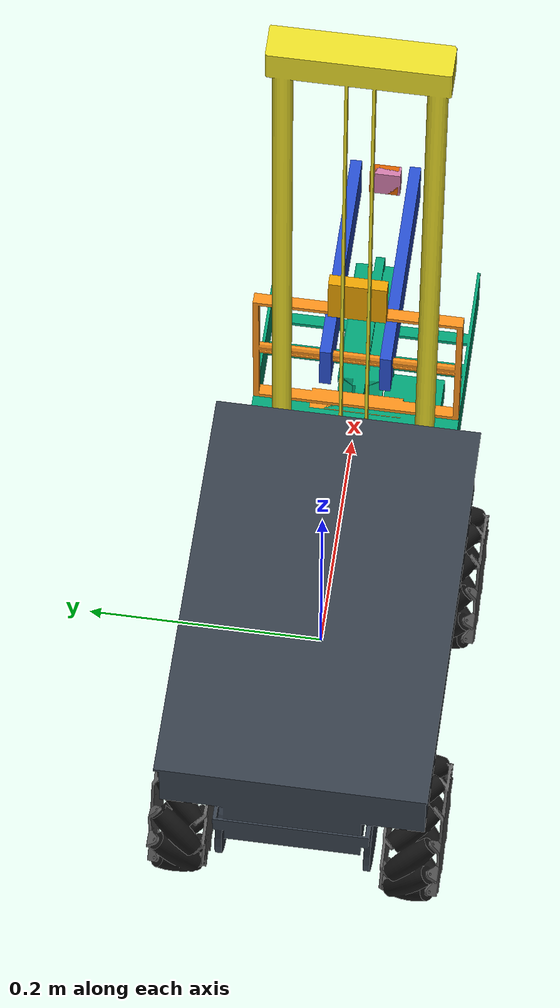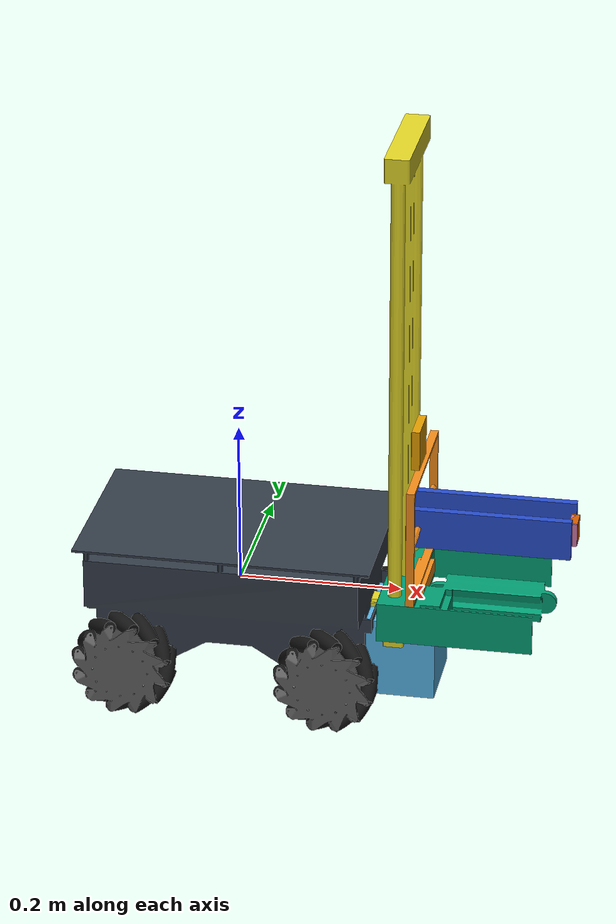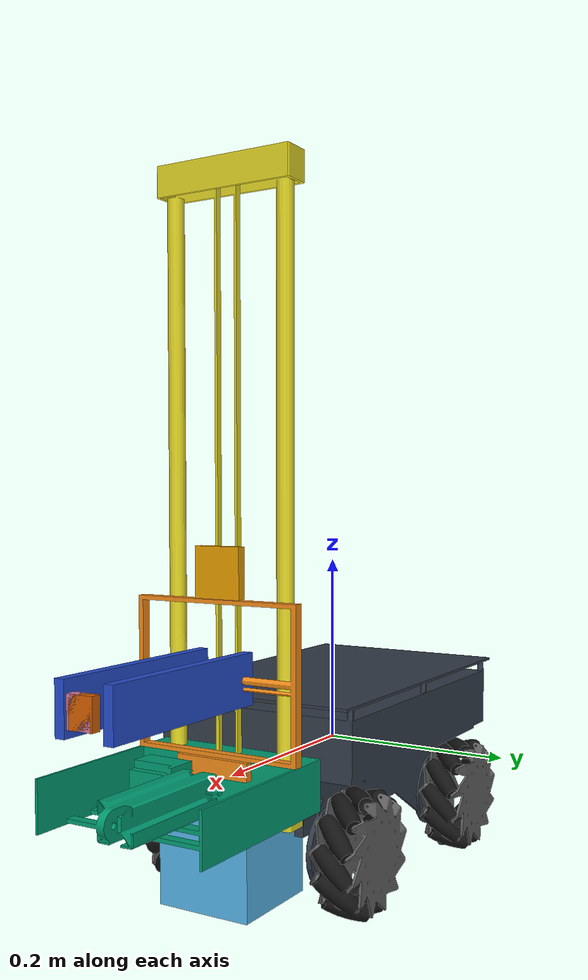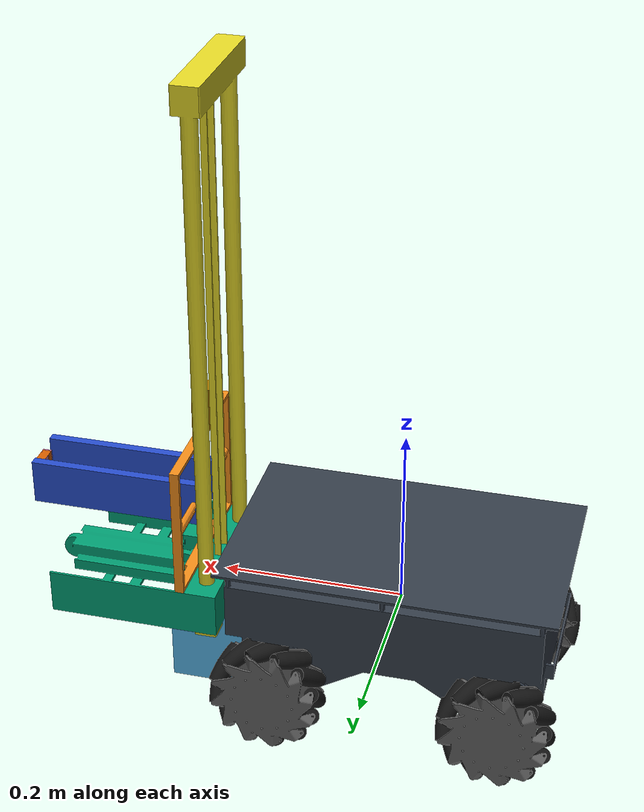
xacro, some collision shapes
<?xml version="1.0"?>

<robot name="summit_xl" xmlns:xacro="http://www.ros.org/wiki/xacro">

	<!-- Import summit XL wheels -->
	<xacro:include filename="$(find summit_description)/urdf/wheels/omni_wheel.urdf.xacro" />
	<xacro:include filename="$(find summit_description)/urdf/base/summit_base.urdf.xacro" />

	<!-- Wheel parameters -->
	<xacro:property name="wheel_offset_x" value="0.125" />    <!-- x,y,z in translation from base_link to the center of the wheel -->
	<xacro:property name="wheel_offset_y" value="0.10" />
	<xacro:property name="wheel_offset_z" value="-0.08" />

	<xacro:macro name="robot">
		<xacro:summit_base/>

		<xacro:omni_wheel prefix="summit_front_right" parent="base_link" reflect="false">
			<origin xyz="${wheel_offset_x} -${wheel_offset_y} ${wheel_offset_z}" rpy="0 0 0"/>
		</xacro:omni_wheel>

		<xacro:omni_wheel prefix="summit_front_left" parent="base_link" reflect="true">
			<origin xyz="${wheel_offset_x} ${wheel_offset_y} ${wheel_offset_z}" rpy="0 0 0"/>
		</xacro:omni_wheel>

		<xacro:omni_wheel prefix="summit_back_left" parent="base_link" reflect="true">
			<origin xyz="-${wheel_offset_x} ${wheel_offset_y} ${wheel_offset_z}" rpy="0 0 0"/>
		</xacro:omni_wheel>

		<xacro:omni_wheel prefix="summit_back_right" parent="base_link" reflect="false">
			<origin xyz="-${wheel_offset_x} -${wheel_offset_y} ${wheel_offset_z}" rpy="0 0 0"/>
		</xacro:omni_wheel>

   </xacro:macro>

   <xacro:robot/>

</robot>

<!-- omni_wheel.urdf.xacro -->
<robot name="wheel" xmlns:xacro="http://www.ros.org/wiki/xacro">

  <!-- Constants -->
  <xacro:property name="PI" value="3.1415926535897931" />
  <xacro:property name="wheel_radius" value="0.063445" />
  <xacro:property name="wheel_height" value="0.05" />
  <xacro:property name="wheel_mass" value="6.5" /> <!-- in kg-->

  <!-- Simple Macro to calculate inertia -->
  <xacro:macro name="cylinder_inertia" params="m r h">
    <inertia  ixx="${m*(3*r*r+h*h)/12}" ixy = "0" ixz = "0"
              iyy="${m*r*r/2}" iyz = "0"
              izz="${m*(3*r*r+h*h)/12}" />
  </xacro:macro>

  <!-- Set up of the Wheel -->
  <xacro:macro name="omni_wheel" params="prefix parent *origin reflect">

    <link name="${prefix}_wheel_link">
      <visual>
        <origin xyz="0 0 0" rpy="0 0 0" />
        <xacro:if value="${reflect}">
          <geometry>
            <mesh filename="package://summit_description/meshes/wheels/wh1.dae" />
          </geometry>
          </xacro:if>
          <xacro:unless value="${reflect}">
            <geometry>
              <mesh filename="package://summit_description/meshes/wheels/wh2.dae" />
            </geometry>
		    </xacro:unless>
      </visual>

      <collision>
				<origin xyz="0 0 0" rpy="${PI/2} 0 0" />
        <geometry>
					<cylinder length="${wheel_height}" radius="${wheel_radius}" />

        </geometry>
      </collision>

         <inertial>
		<mass value="6.5"/>
		<inertia
			ixx="0.030309499999999996" ixy="0.0" ixz="0.0" iyy="0.030309499999999996" iyz="0.0" izz="0.05241925"/>
		</inertial>
    </link>

    <joint name="${prefix}_wheel_joint" type="continuous">
      <parent link="${parent}"/>
      <child link="${prefix}_wheel_link"/>
      <xacro:insert_block name="origin" />
      <axis xyz="0 1 0" rpy="0 0 0" />
      <limit effort="100" velocity="100"/>
      <joint_properties damping="0.0" friction="0.0"/>
    </joint>

    <!-- Transmission is important to link the joints and the controller (see summit_xl_control/config/summit_xl_control.yaml)-->

  </xacro:macro>
</robot>

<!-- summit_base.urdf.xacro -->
<robot name="summit_xl" xmlns:xacro="http://www.ros.org/wiki/xacro">

  <xacro:macro name="summit_base">

	  <!-- Robot mechanical and motor parameters -->
	  <xacro:property name="PI" value="3.1415926535897931"/>
	  <xacro:property name="wheel_width" value="0.175" />

	<!-- BASE FOOTPRINT -->

    <gazebo>
        <plugin name="gazebo_ros_control" filename="libgazebo_ros_control.so">
            <robotNamespace>/lib_bot</robotNamespace>
        </plugin>
    </gazebo>

  <material name="black">
    <color rgba="0.0 0.0 0.0 1.0"/>
  </material>
  <material name="blue">
    <color rgba="0.203125 0.23828125 0.28515625 1.0"/>
  </material>
  <material name="green">
    <color rgba="0.0 0.8 0.0 1.0"/>
  </material>
  <material name="grey">
    <color rgba="0.2 0.2 0.2 1.0"/>
  </material>
  <material name="orange">
    <color rgba="1.0 0.423529411765 0.0392156862745 1.0"/>
  </material>
  <material name="brown">
    <color rgba="0.870588235294 0.811764705882 0.764705882353 1.0"/>
  </material>
  <material name="red">
    <color rgba="0.80078125 0.12890625 0.1328125 1.0"/>
  </material>
  <material name="white">
    <color rgba="1.0 1.0 1.0 1.0"/>
  </material>

  <gazebo reference="base_link">
    <material>Gazebo/Orange</material>
  </gazebo>
  <gazebo reference="link_left_wheel">
    <material>Gazebo/Blue</material>
  </gazebo>
  <gazebo reference="link_right_wheel">
    <material>Gazebo/Blue</material>
  </gazebo>
    <gazebo reference="tower_link">
    <material>Gazebo/Yellow</material>
  </gazebo>
  <gazebo reference="push_link">
    <material>Gazebo/Orange</material>
  </gazebo>
  <gazebo reference="jaw_1_link">
    <material>Gazebo/Blue</material>
  </gazebo>
  <gazebo reference="jaw_2_link">
    <material>Gazebo/Blue</material>
  </gazebo>

  <link name="base_link">
    <!-- pose and inertial -->
    <pose>0 0 0.1 0 0 0</pose>

    <inertial>
      <mass value="5"/>
      <origin rpy="0 0 0" xyz="0 0 0.1"/>
      <inertia ixx="0.0395416666667" ixy="0" ixz="0" iyy="0.106208333333" iyz="0" izz="0.106208333333"/>
    </inertial>

    <collision name="collision_chassis">
      <geometry>
       <mesh filename="package://summit_description/meshes/base/true_bae.dae" />
      </geometry>
    </collision>

    <visual>
      <origin rpy="0 0 0" xyz="0 0 0"/>
      <geometry>
         <mesh filename="package://summit_description/meshes/base/true_bae.dae" />
      </geometry>
      <material name="blue"/>
    </visual>

    </link>

  <!-- Create wheel right -->

    <link name="tower_link">
        <visual>
            <origin rpy="0 0 0" xyz="0 0 0.275"/>
            <geometry>
                <mesh filename="package://summit_description/meshes/base/tower.dae" />
            </geometry>
        </visual>
        <collision>
            <origin xyz="0 0 0.275" rpy="0 0 0"/>
            <geometry>
                 <box size="0.025 0.15 0.60"/>
            </geometry>
        </collision>
        <inertial>
            <origin xyz="0 0 0" rpy="0 0 0"/>
            <mass value="0.5" />
            <inertia ixx="0.0014541666666666665" ixy="0.0" ixz="0.0" iyy="0.0010416666666666667" iyz="0.0" izz="0.0022874999999999996"/>
        </inertial>
    </link>

    <link name="elevtor_link">
        <visual>
            <origin rpy="0 0 0" xyz="0 0 0"/>
            <geometry>
                 <mesh filename="package://summit_description/meshes/base/elevator.dae" />
            </geometry>
        </visual>
        <collision>
            <origin xyz="0 0 0" rpy="0 0 0"/>
            <geometry>
                <box size="0.15 0.18 0.05"/>
            </geometry>
        </collision>
        <inertial>
            <origin xyz="0 0 0" rpy="0 0 0"/>
            <mass value="0.5" />
            <inertia ixx="0.0014541666666666665" ixy="0.0" ixz="0.0" iyy="0.0010416666666666667" iyz="0.0" izz="0.0022874999999999996"/>
        </inertial>
    </link>

    <link name="push_link">
        <visual>
            <origin rpy="0 0 0" xyz="0 0 0"/>
            <geometry>
                <mesh filename="package://summit_description/meshes/base/push.dae" />
            </geometry>
        </visual>
        <collision>
            <origin xyz="0 0 0" rpy="0 0 0"/>
            <geometry>
                 <box size="0.01 0.18 0.15"/>
            </geometry>
        </collision>
        <inertial>
            <origin xyz="0 0 0" rpy="0 0 0"/>
            <mass value="0.05" />
            <inertia ixx="0.00022874999999999998" ixy="0.0" ixz="0.0" iyy="9.416666666666666e-05" iyz="0.0" izz="0.00013541666666666666"/>
        </inertial>
    </link>

    <link name="jaw_1_link">
        <visual>
            <origin rpy="0 0 0" xyz="0 0 0"/>
            <geometry>
                <box size="0.20 0.01 0.05"/>
            </geometry>
        </visual>
        <collision>
            <origin xyz="0 0 0" rpy="0 0 0"/>
            <geometry>
                 <box size="0.20 0.01 0.05"/>
            </geometry>
        </collision>
        <inertial>
            <origin xyz="0 0 0" rpy="0 0 0"/>
            <mass value="0.05" />
            <inertia ixx="0.00022874999999999998" ixy="0.0" ixz="0.0" iyy="9.416666666666666e-05" iyz="0.0" izz="0.00013541666666666666"/>
        </inertial>
    </link>

    <link name="jaw_1_attach">

    <visual>
      <origin xyz="0 0 0" rpy="0 0 0"/>
      <geometry>
        <box size="0.01 0.025 0.03"/>
      </geometry>
    </visual>
    <collision>
      <origin xyz="0 0 0" rpy="0 0 0"/>
      <geometry>
        <box size="0.01 0.025 0.03"/>
      </geometry>
    </collision>
    <inertial>
            <origin xyz="0 0 0" rpy="0 0 0" />
            <mass value="0.05" />
            <inertia ixx="4.166666666666667e-05" ixy="0.0" ixz="0.0" iyy="2.166666666666667e-05" iyz="0.0" izz="2.166666666666667e-05" />
    </inertial>

  </link>
  <link name="jaw_2_attach">

    <visual>
      <origin xyz="0 0 0" rpy="0 0 0"/>
      <geometry>
        <box size="0.01 0.025 0.03"/>
      </geometry>
    </visual>
    <collision>
      <origin xyz="0 0 0" rpy="0 0 0"/>
      <geometry>
        <box size="0.01 0.025 0.03"/>
      </geometry>
    </collision>
    <inertial>
            <origin xyz="0 0 0" rpy="0 0 0" />
            <mass value="0.05" />
            <inertia ixx="4.166666666666667e-05" ixy="0.0" ixz="0.0" iyy="2.166666666666667e-05" iyz="0.0" izz="2.166666666666667e-05" />
    </inertial>

  </link>

    <link name="jaw_2_link">
        <visual>
            <origin rpy="0 0 0" xyz="0 0 0"/>
            <geometry>
                <box size="0.20 0.01 0.05"/>
            </geometry>
        </visual>
        <collision>
            <origin xyz="0 0 0" rpy="0 0 0"/>
            <geometry>
                <box size="0.20 0.01 0.05"/>
            </geometry>
        </collision>
        <inertial>
            <origin xyz="0 0 0" rpy="0 0 0"/>
            <mass value="0.05" />
            <inertia ixx="0.00022874999999999998" ixy="0.0" ixz="0.0" iyy="9.416666666666666e-05" iyz="0.0" izz="0.00013541666666666666"/>
        </inertial>
    </link>

    <link name="camera">

    <visual>
      <origin xyz="0 0 0" rpy="0 0 0"/>
      <geometry>
        <box size="0.01 0.05 0.05"/>
      </geometry>
    </visual>
    <collision>
      <origin xyz="0 0 0" rpy="0 0 0"/>
      <geometry>
        <box size="0.05 0.05 0.05"/>
      </geometry>
    </collision>
    <inertial>
            <origin xyz="0 0 0" rpy="0 0 0" />
            <mass value="0.05" />
            <inertia ixx="4.166666666666667e-05" ixy="0.0" ixz="0.0" iyy="2.166666666666667e-05" iyz="0.0" izz="2.166666666666667e-05" />
    </inertial>

  </link>

  <link name="hokuyo_bottom">
    <collision>
      <origin xyz="0 0 0" rpy="0 0 0"/>
      <geometry>
    <box size="0.1 0.1 0.1"/>
      </geometry>
    </collision>

    <visual>
      <origin xyz="0 0 0" rpy="0 0 0"/>
      <geometry>
          <mesh filename="package://summit_description/meshes/base/hokuyo.dae" />
      </geometry>
    </visual>

    <inertial>
      <mass value="1e-5" />
      <origin xyz="0 0 0" rpy="0 0 0"/>
      <inertia ixx="1e-6" ixy="0" ixz="0" iyy="1e-6" iyz="0" izz="1e-6" />
    </inertial>
  </link>

  <!-- Left Wheel link -->

  <joint name="base_link_tower_link_joint" type="fixed">
    <origin xyz="0.20 0 0" rpy="0 0 0"/>
    <parent link="base_link"/>
    <child link="tower_link"/>
 </joint>

  <joint name="tower_link_elevtor_link_joint" type="prismatic">
    <axis xyz="0 0 1"/>
    <parent link="tower_link"/>
    <child link="elevtor_link"/>
    <limit effort="1000.0" lower="0" upper="0.55" velocity="0.2"/>
    <origin rpy="0 0 0" xyz="0.090 0 0"/>
  </joint>

  <joint name="elevtor_link_push_link_joint" type="prismatic">
    <axis xyz="1 0 0"/>
    <parent link="elevtor_link"/>
    <child link="push_link"/>
    <limit effort="1000.0" lower="0" upper="0.14" velocity="0.2"/>
    <origin rpy="0 0 0" xyz="-0.070 0 0.1"/>
  </joint>

  <joint name="push_link_jaw_1_joint" type="prismatic">
    <axis xyz="0 1 0"/>
    <parent link="push_link"/>
    <child link="jaw_1_link"/>
    <limit effort="1000.0" lower="0" upper="0.075" velocity="0.2"/>
    <origin rpy="0 0 0" xyz="0.090 0.026 0"/>
  </joint>

  <joint name="push_link_jaw_2_joint" type="prismatic">
    <axis xyz="0 1 0"/>
    <parent link="push_link"/>
    <child link="jaw_2_link"/>
    <limit effort="1000.0" lower="-0.075" upper="0" velocity="0.2"/>
    <origin rpy="0 0 0" xyz="0.090 -0.026 0"/>
  </joint>

  <joint name="camera_joint" type="fixed">
        <axis xyz="0 1 0" />
        <origin xyz="0 0 0.1" rpy="0 0 0"/>
        <parent link="push_link"/>
        <child link="camera"/>
  </joint>
  <joint name="hokuyo_bottom_joint" type="fixed">
    <axis xyz="0 1 0" />
    <origin xyz="0 0 -.07" rpy="0 0 0"/>
    <parent link="tower_link"/>
    <child link="hokuyo_bottom"/>
  </joint>
  <joint name="attach_1_joint" type="fixed">
    <axis xyz="0 1 0" />
    <origin xyz="0.10 -0.025 0" rpy="0 0 0"/>
    <parent link="jaw_1_link"/>
    <child link="jaw_1_attach"/>
  </joint>
  <joint name="attach_2_joint" type="fixed">
    <axis xyz="0 1 0" />
    <origin xyz="0.10 0.025 0" rpy="0 0 0"/>
    <parent link="jaw_2_link"/>
    <child link="jaw_2_attach"/>
  </joint>

   <transmission name="tran1">
    <type>transmission_interface/SimpleTransmission</type>
    <joint name="tower_link_elevtor_link_joint">
      <hardwareInterface>hardware_interface/PositionJointInterface</hardwareInterface>
    </joint>
    <actuator name="motor1">
      <hardwareInterface>hardware_interface/PositionJointInterface</hardwareInterface>
      <mechanicalReduction>1</mechanicalReduction>
    </actuator>
  </transmission>

  <transmission name="tran2">
    <type>transmission_interface/SimpleTransmission</type>
    <joint name="elevtor_link_push_link_joint">
      <hardwareInterface>hardware_interface/PositionJointInterface</hardwareInterface>
    </joint>
    <actuator name="motor2">
      <hardwareInterface>hardware_interface/PositionJointInterface</hardwareInterface>
      <mechanicalReduction>1</mechanicalReduction>
    </actuator>
  </transmission>

  <transmission name="tran3">
    <type>transmission_interface/SimpleTransmission</type>
    <joint name="push_link_jaw_1_joint">
      <hardwareInterface>hardware_interface/PositionJointInterface</hardwareInterface>
    </joint>
    <actuator name="motor3">
      <hardwareInterface>hardware_interface/PositionJointInterface</hardwareInterface>
      <mechanicalReduction>1</mechanicalReduction>
    </actuator>
  </transmission>

  <transmission name="tran4">
    <type>transmission_interface/SimpleTransmission</type>
    <joint name="push_link_jaw_2_joint">
      <hardwareInterface>hardware_interface/PositionJointInterface</hardwareInterface>
    </joint>
    <actuator name="motor4">
      <hardwareInterface>hardware_interface/PositionJointInterface</hardwareInterface>
      <mechanicalReduction>1</mechanicalReduction>
    </actuator>
  </transmission>

 <gazebo reference="camera">
    <sensor type="camera" name="camera1">
      <update_rate>30.0</update_rate>
      <camera name="head">
        <horizontal_fov>1.3962634</horizontal_fov>
        <image>
          <width>800</width>
          <height>800</height>
          <format>R8G8B8</format>
        </image>
        <clip>
          <near>0.02</near>
          <far>300</far>
        </clip>
      </camera>
      <plugin name="camera_controller" filename="libgazebo_ros_camera.so">
        <alwaysOn>true</alwaysOn>
        <updateRate>0.0</updateRate>
        <cameraName>lib_bot/camera</cameraName>
        <imageTopicName>image_raw</imageTopicName>
        <cameraInfoTopicName>camera_info</cameraInfoTopicName>
        <frameName>camera</frameName>
        <hackBaseline>0.07</hackBaseline>
        <distortionK1>0.0</distortionK1>
        <distortionK2>0.0</distortionK2>
        <distortionK3>0.0</distortionK3>
        <distortionT1>0.0</distortionT1>
        <distortionT2>0.0</distortionT2>
      </plugin>
    </sensor>
  </gazebo>

  <gazebo reference="hokuyo_bottom">
    <sensor type="gpu_ray" name="head_hokuyo_sensor">
      <pose>0 0 0 0 0 0</pose>
      <visualize>true</visualize>
      <update_rate>20</update_rate>
      <ray>
        <scan>
          <horizontal>
            <samples>720</samples>
            <resolution>1</resolution>
            <min_angle>-1.57</min_angle>
            <max_angle>1.57</max_angle>
          </horizontal>
        </scan>
        <range>
          <min>0.10</min>
          <max>30.0</max>
          <resolution>0.01</resolution>
        </range>
        <noise>
          <type>gaussian</type>
          <mean>0.0</mean>
          <stddev>0.01</stddev>
        </noise>
      </ray>
      <plugin name="gazebo_ros_head_hokuyo_controller" filename="libgazebo_ros_gpu_laser.so">
        <topicName>/mybot/laser/scan_bottom</topicName>
        <frameName>hokuyo_bottom</frameName>
      </plugin>
    </sensor>
  </gazebo>

  <gazebo>
    <plugin name="omni_steering" filename="libgazebo_ros_planar_move.so">
      <commandTopic>cmd_vel</commandTopic>
      <odometryTopic>odom</odometryTopic>
      <odometryFrame>odom</odometryFrame>
      <odometryRate>100.0</odometryRate>
      <robotBaseFrame>base_link</robotBaseFrame>
      <publishTF>false</publishTF>
      <publishWheelJointState>false</publishWheelJointState>
    </plugin>
  </gazebo>

  </xacro:macro>

</robot>
